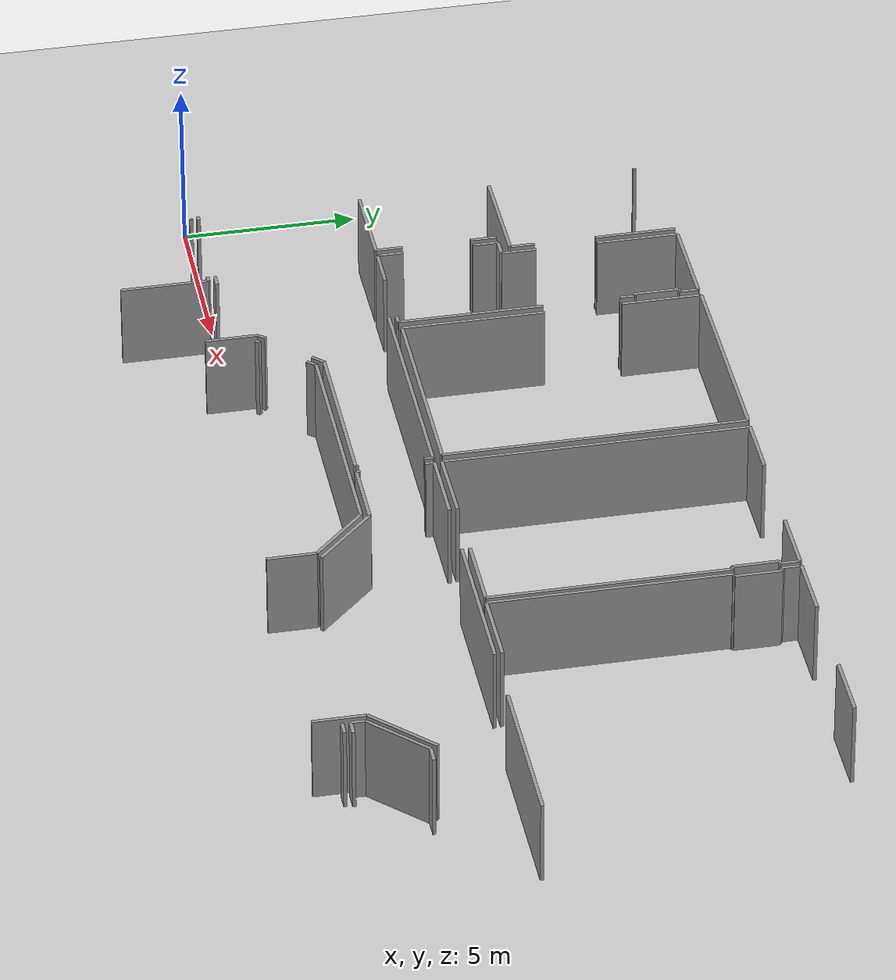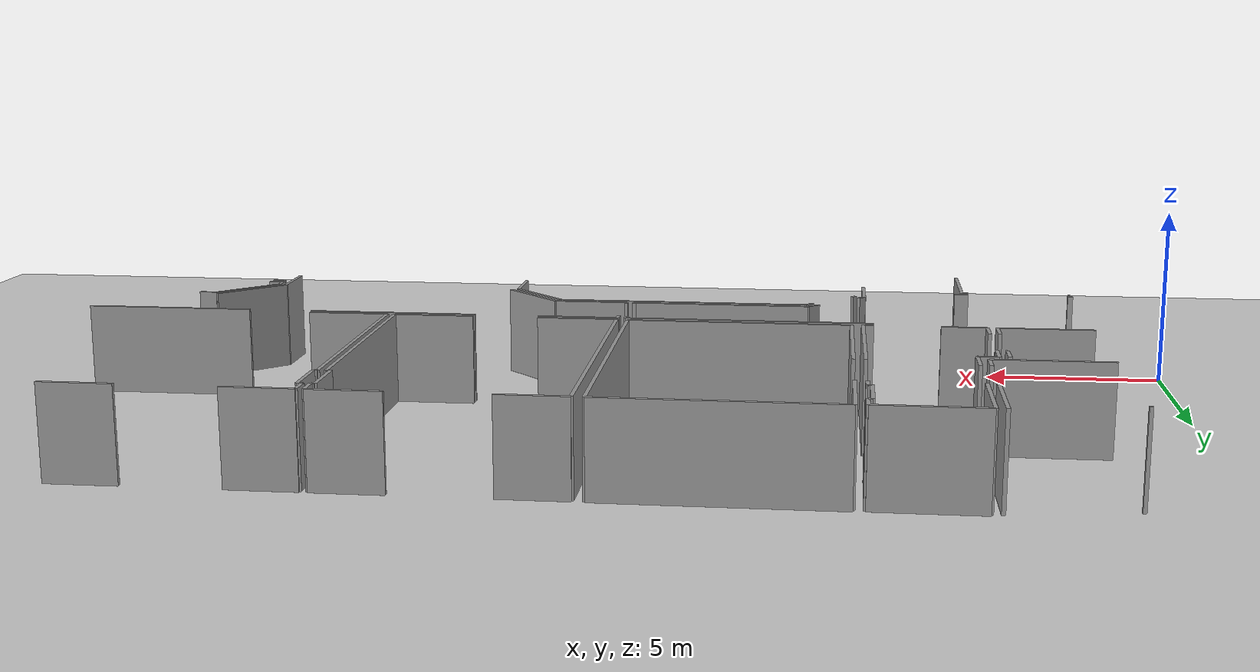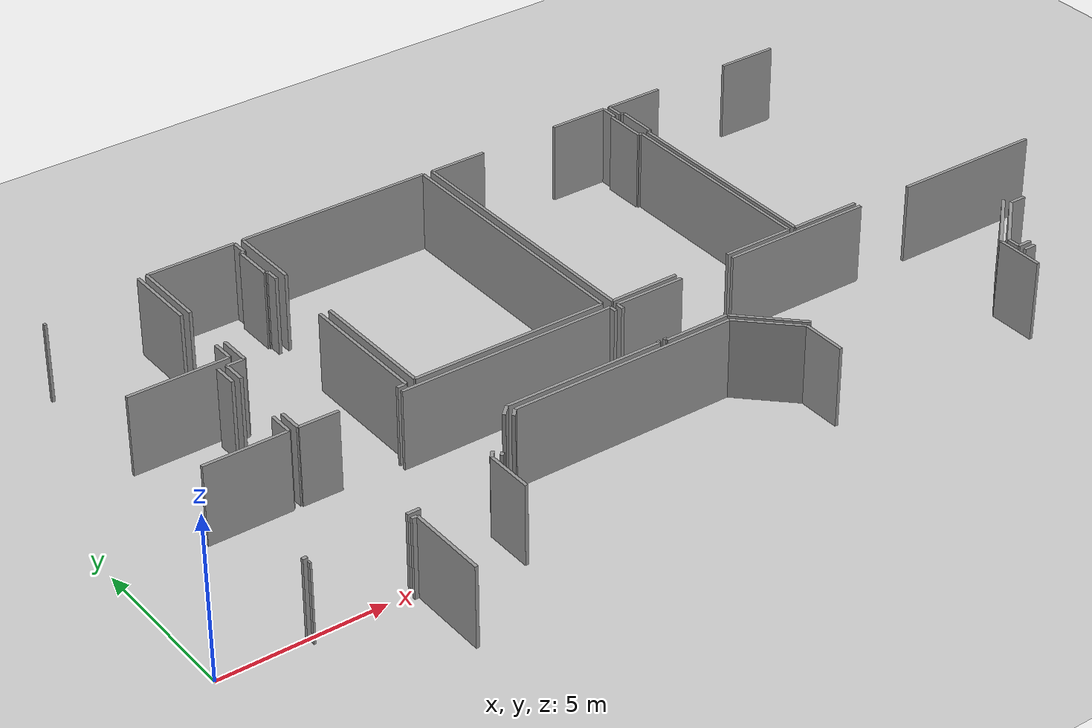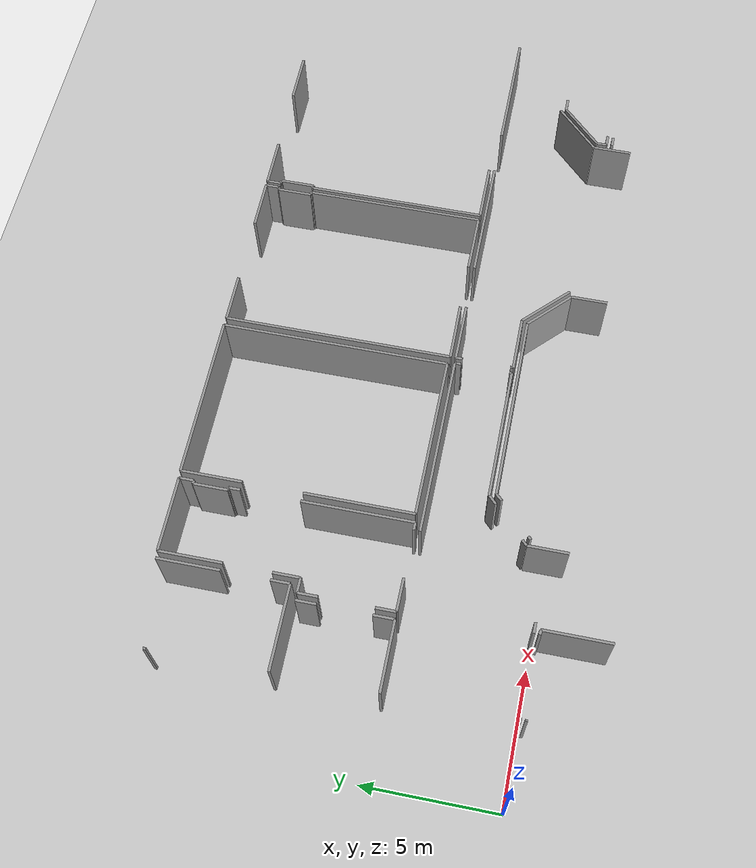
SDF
<sdf version="1.6">
 <world name="default">
  <model name="ground_plane">
   <static>1</static>
   <link name="link">
    <collision name="collision">
     <geometry><plane><normal>0 0 1</normal><size>100 100</size></plane></geometry>
     <surface><friction><ode><mu>100</mu><mu2>50</mu2></ode></friction></surface>
    </collision>
    <visual name="visual">
     <cast_shadows>0</cast_shadows>
     <geometry><plane><normal>0 0 1</normal><size>100 100</size></plane></geometry>
     <material>
      <script><uri>file://media/materials/scripts/gazebo.material</uri><name>Gazebo/Grey</name></script>
     </material>
    </visual>
   </link>
  </model>
  <model name="0510040943_A-40">
   <static>1</static>
   <link name="Wall_300">
    <collision name="Wall_300_Collision">
     <geometry><box><size>0.394022428579 0.1 2.5</size></box></geometry>
     <pose>0.197011214289 0 1.25 0 0 0</pose>
    </collision>
    <visual name="Wall_300_Visual">
     <pose>0.197011214289 0 1.25 0 0 0</pose>
     <geometry><box><size>0.394022428579 0.1 2.5</size></box></geometry>
     <material>
      <script><uri>file://media/materials/scripts/gazebo.material</uri><name>Gazebo/Grey</name></script>
      <ambient>1 1 1 1</ambient>
     </material>
    </visual>
    <pose>62.1956665144 -13.3688537068 0 0 0 3.14159265359</pose>
   </link>
   <link name="Wall_301">
    <collision name="Wall_301_Collision">
     <geometry><box><size>0.147916983813 0.1 2.5</size></box></geometry>
     <pose>0.0739584919064 0 1.25 0 0 0</pose>
    </collision>
    <visual name="Wall_301_Visual">
     <pose>0.0739584919064 0 1.25 0 0 0</pose>
     <geometry><box><size>0.147916983813 0.1 2.5</size></box></geometry>
     <material>
      <script><uri>file://media/materials/scripts/gazebo.material</uri><name>Gazebo/Grey</name></script>
      <ambient>1 1 1 1</ambient>
     </material>
    </visual>
    <pose>58.9172629015 -13.3688537068 0 0 0 3.14159265359</pose>
   </link>
   <link name="Wall_305">
    <collision name="Wall_305_Collision">
     <geometry><box><size>6.81027046227 0.1 2.5</size></box></geometry>
     <pose>3.40513523114 0 1.25 0 0 0</pose>
    </collision>
    <visual name="Wall_305_Visual">
     <pose>3.40513523114 0 1.25 0 0 0</pose>
     <geometry><box><size>6.81027046227 0.1 2.5</size></box></geometry>
     <material>
      <script><uri>file://media/materials/scripts/gazebo.material</uri><name>Gazebo/Grey</name></script>
      <ambient>1 1 1 1</ambient>
     </material>
    </visual>
    <pose>64.6714365454 -8.88034708479 0 0 0 0.0</pose>
   </link>
   <link name="Wall_306">
    <collision name="Wall_306_Collision">
     <geometry><box><size>0.237859643781 0.1 2.5</size></box></geometry>
     <pose>0.118929821891 0 1.25 0 0 0</pose>
    </collision>
    <visual name="Wall_306_Visual">
     <pose>0.118929821891 0 1.25 0 0 0</pose>
     <geometry><box><size>0.237859643781 0.1 2.5</size></box></geometry>
     <material>
      <script><uri>file://media/materials/scripts/gazebo.material</uri><name>Gazebo/Grey</name></script>
      <ambient>1 1 1 1</ambient>
     </material>
    </visual>
    <pose>71.4817070077 -8.88034708479 0 0 0 -1.57079632679</pose>
   </link>
   <link name="Wall_307">
    <collision name="Wall_307_Collision">
     <geometry><box><size>0.0882934997717 0.1 2.5</size></box></geometry>
     <pose>0.0441467498858 0 1.25 0 0 0</pose>
    </collision>
    <visual name="Wall_307_Visual">
     <pose>0.0441467498858 0 1.25 0 0 0</pose>
     <geometry><box><size>0.0882934997717 0.1 2.5</size></box></geometry>
     <material>
      <script><uri>file://media/materials/scripts/gazebo.material</uri><name>Gazebo/Grey</name></script>
      <ambient>1 1 1 1</ambient>
     </material>
    </visual>
    <pose>71.4817070077 -10.9481402547 0 0 0 -1.57079632679</pose>
   </link>
   <link name="Wall_308">
    <collision name="Wall_308_Collision">
     <geometry><box><size>5.00126858477 0.1 2.5</size></box></geometry>
     <pose>2.50063429238 0 1.25 0 0 0</pose>
    </collision>
    <visual name="Wall_308_Visual">
     <pose>2.50063429238 0 1.25 0 0 0</pose>
     <geometry><box><size>5.00126858477 0.1 2.5</size></box></geometry>
     <material>
      <script><uri>file://media/materials/scripts/gazebo.material</uri><name>Gazebo/Grey</name></script>
      <ambient>1 1 1 1</ambient>
     </material>
    </visual>
    <pose>71.4817070077 -11.0364337545 0 0 0 3.14159265359</pose>
   </link>
   <link name="Wall_309">
    <collision name="Wall_309_Collision">
     <geometry><box><size>0.411017431588 0.1 2.5</size></box></geometry>
     <pose>0.205508715794 0 1.25 0 0 0</pose>
    </collision>
    <visual name="Wall_309_Visual">
     <pose>0.205508715794 0 1.25 0 0 0</pose>
     <geometry><box><size>0.411017431588 0.1 2.5</size></box></geometry>
     <material>
      <script><uri>file://media/materials/scripts/gazebo.material</uri><name>Gazebo/Grey</name></script>
      <ambient>1 1 1 1</ambient>
     </material>
    </visual>
    <pose>66.4804384229 -11.0364337545 0 0 0 -2.3544485295</pose>
   </link>
   <link name="Wall_310">
    <collision name="Wall_310_Collision">
     <geometry><box><size>0.254203908047 0.1 2.5</size></box></geometry>
     <pose>0.127101954023 0 1.25 0 0 0</pose>
    </collision>
    <visual name="Wall_310_Visual">
     <pose>0.127101954023 0 1.25 0 0 0</pose>
     <geometry><box><size>0.254203908047 0.1 2.5</size></box></geometry>
     <material>
      <script><uri>file://media/materials/scripts/gazebo.material</uri><name>Gazebo/Grey</name></script>
      <ambient>1 1 1 1</ambient>
     </material>
    </visual>
    <pose>65.0339980718 -12.4547115238 0 0 0 -2.28662178168</pose>
   </link>
   <link name="Wall_311">
    <collision name="Wall_311_Collision">
     <geometry><box><size>1.50022834526 0.1 2.5</size></box></geometry>
     <pose>0.750114172629 0 1.25 0 0 0</pose>
    </collision>
    <visual name="Wall_311_Visual">
     <pose>0.750114172629 0 1.25 0 0 0</pose>
     <geometry><box><size>1.50022834526 0.1 2.5</size></box></geometry>
     <material>
      <script><uri>file://media/materials/scripts/gazebo.material</uri><name>Gazebo/Grey</name></script>
      <ambient>1 1 1 1</ambient>
     </material>
    </visual>
    <pose>64.8671791749 -12.6465215406 0 0 0 -1.57079632679</pose>
   </link>
   <link name="Wall_406">
    <collision name="Wall_406_Collision">
     <geometry><box><size>0.383746891967 0.1 2.5</size></box></geometry>
     <pose>0.191873445984 0 1.25 0 0 0</pose>
    </collision>
    <visual name="Wall_406_Visual">
     <pose>0.191873445984 0 1.25 0 0 0</pose>
     <geometry><box><size>0.383746891967 0.1 2.5</size></box></geometry>
     <material>
      <script><uri>file://media/materials/scripts/gazebo.material</uri><name>Gazebo/Grey</name></script>
      <ambient>1 1 1 1</ambient>
     </material>
    </visual>
    <pose>82.5804282742 -13.3693611407 0 0 0 0.0</pose>
   </link>
   <link name="Wall_413">
    <collision name="Wall_413_Collision">
     <geometry><box><size>0.391865834475 0.1 2.5</size></box></geometry>
     <pose>0.195932917238 0 1.25 0 0 0</pose>
    </collision>
    <visual name="Wall_413_Visual">
     <pose>0.195932917238 0 1.25 0 0 0</pose>
     <geometry><box><size>0.391865834475 0.1 2.5</size></box></geometry>
     <material>
      <script><uri>file://media/materials/scripts/gazebo.material</uri><name>Gazebo/Grey</name></script>
      <ambient>1 1 1 1</ambient>
     </material>
    </visual>
    <pose>82.576115086 -13.1377175623 0 0 0 1.57079632679</pose>
   </link>
   <link name="Wall_414">
    <collision name="Wall_414_Collision">
     <geometry><box><size>2.07329721891 0.1 2.5</size></box></geometry>
     <pose>1.03664860945 0 1.25 0 0 0</pose>
    </collision>
    <visual name="Wall_414_Visual">
     <pose>1.03664860945 0 1.25 0 0 0</pose>
     <geometry><box><size>2.07329721891 0.1 2.5</size></box></geometry>
     <material>
      <script><uri>file://media/materials/scripts/gazebo.material</uri><name>Gazebo/Grey</name></script>
      <ambient>1 1 1 1</ambient>
     </material>
    </visual>
    <pose>82.576115086 -12.7458517278 0 0 0 0.78725858612</pose>
   </link>
   <link name="Wall_415">
    <collision name="Wall_415_Collision">
     <geometry><box><size>0.50451616177 0.1 2.5</size></box></geometry>
     <pose>0.252258080885 0 1.25 0 0 0</pose>
    </collision>
    <visual name="Wall_415_Visual">
     <pose>0.252258080885 0 1.25 0 0 0</pose>
     <geometry><box><size>0.50451616177 0.1 2.5</size></box></geometry>
     <material>
      <script><uri>file://media/materials/scripts/gazebo.material</uri><name>Gazebo/Grey</name></script>
      <ambient>1 1 1 1</ambient>
     </material>
    </visual>
    <pose>84.0394276146 -11.2770842848 0 0 0 0.0</pose>
   </link>
   <link name="Wall_418">
    <collision name="Wall_418_Collision">
     <geometry><box><size>0.433118917314 0.1 2.5</size></box></geometry>
     <pose>0.216559458657 0 1.25 0 0 0</pose>
    </collision>
    <visual name="Wall_418_Visual">
     <pose>0.216559458657 0 1.25 0 0 0</pose>
     <geometry><box><size>0.433118917314 0.1 2.5</size></box></geometry>
     <material>
      <script><uri>file://media/materials/scripts/gazebo.material</uri><name>Gazebo/Grey</name></script>
      <ambient>1 1 1 1</ambient>
     </material>
    </visual>
    <pose>83.0092099254 -13.1422844674 0 0 0 3.13104822894</pose>
   </link>
   <link name="Wall_454">
    <collision name="Wall_454_Collision">
     <geometry><box><size>2.27709768792 0.1 2.5</size></box></geometry>
     <pose>1.13854884396 0 1.25 0 0 0</pose>
    </collision>
    <visual name="Wall_454_Visual">
     <pose>1.13854884396 0 1.25 0 0 0</pose>
     <geometry><box><size>2.27709768792 0.1 2.5</size></box></geometry>
     <material>
      <script><uri>file://media/materials/scripts/gazebo.material</uri><name>Gazebo/Grey</name></script>
      <ambient>1 1 1 1</ambient>
     </material>
    </visual>
    <pose>75.3809560055 -12.6668188968 0 0 0 2.35615509685</pose>
   </link>
   <link name="Wall_455">
    <collision name="Wall_455_Collision">
     <geometry><box><size>2.05992794439 0.1 2.5</size></box></geometry>
     <pose>1.02996397219 0 1.25 0 0 0</pose>
    </collision>
    <visual name="Wall_455_Visual">
     <pose>1.02996397219 0 1.25 0 0 0</pose>
     <geometry><box><size>2.05992794439 0.1 2.5</size></box></geometry>
     <material>
      <script><uri>file://media/materials/scripts/gazebo.material</uri><name>Gazebo/Grey</name></script>
      <ambient>1 1 1 1</ambient>
     </material>
    </visual>
    <pose>73.7708682194 -11.0566042523 0 0 0 3.14159265359</pose>
   </link>
   <link name="Wall_456">
    <collision name="Wall_456_Collision">
     <geometry><box><size>0.108717714518 0.1 2.5</size></box></geometry>
     <pose>0.0543588572588 0 1.25 0 0 0</pose>
    </collision>
    <visual name="Wall_456_Visual">
     <pose>0.0543588572588 0 1.25 0 0 0</pose>
     <geometry><box><size>0.108717714518 0.1 2.5</size></box></geometry>
     <material>
      <script><uri>file://media/materials/scripts/gazebo.material</uri><name>Gazebo/Grey</name></script>
      <ambient>1 1 1 1</ambient>
     </material>
    </visual>
    <pose>71.710940275 -11.0566042523 0 0 0 1.57079632679</pose>
   </link>
   <link name="Wall_457">
    <collision name="Wall_457_Collision">
     <geometry><box><size>0.258664433957 0.1 2.5</size></box></geometry>
     <pose>0.129332216979 0 1.25 0 0 0</pose>
    </collision>
    <visual name="Wall_457_Visual">
     <pose>0.129332216979 0 1.25 0 0 0</pose>
     <geometry><box><size>0.258664433957 0.1 2.5</size></box></geometry>
     <material>
      <script><uri>file://media/materials/scripts/gazebo.material</uri><name>Gazebo/Grey</name></script>
      <ambient>1 1 1 1</ambient>
     </material>
    </visual>
    <pose>71.710940275 -9.1349520475 0 0 0 1.57079632679</pose>
   </link>
   <link name="Wall_458">
    <collision name="Wall_458_Collision">
     <geometry><box><size>2.2230679454 0.1 2.5</size></box></geometry>
     <pose>1.1115339727 0 1.25 0 0 0</pose>
    </collision>
    <visual name="Wall_458_Visual">
     <pose>1.1115339727 0 1.25 0 0 0</pose>
     <geometry><box><size>2.2230679454 0.1 2.5</size></box></geometry>
     <material>
      <script><uri>file://media/materials/scripts/gazebo.material</uri><name>Gazebo/Grey</name></script>
      <ambient>1 1 1 1</ambient>
     </material>
    </visual>
    <pose>71.710940275 -8.87628761354 0 0 0 0.0</pose>
   </link>
   <link name="Wall_459">
    <collision name="Wall_459_Collision">
     <geometry><box><size>4.71215811641 0.1 2.5</size></box></geometry>
     <pose>2.3560790582 0 1.25 0 0 0</pose>
    </collision>
    <visual name="Wall_459_Visual">
     <pose>2.3560790582 0 1.25 0 0 0</pose>
     <geometry><box><size>4.71215811641 0.1 2.5</size></box></geometry>
     <material>
      <script><uri>file://media/materials/scripts/gazebo.material</uri><name>Gazebo/Grey</name></script>
      <ambient>1 1 1 1</ambient>
     </material>
    </visual>
    <pose>75.7252499112 -8.87628761354 0 0 0 0.0</pose>
   </link>
   <link name="Wall_460">
    <collision name="Wall_460_Collision">
     <geometry><box><size>4.7002334196 0.1 2.5</size></box></geometry>
     <pose>2.3501167098 0 1.25 0 0 0</pose>
    </collision>
    <visual name="Wall_460_Visual">
     <pose>2.3501167098 0 1.25 0 0 0</pose>
     <geometry><box><size>4.7002334196 0.1 2.5</size></box></geometry>
     <material>
      <script><uri>file://media/materials/scripts/gazebo.material</uri><name>Gazebo/Grey</name></script>
      <ambient>1 1 1 1</ambient>
     </material>
    </visual>
    <pose>82.2159638707 -8.87628761354 0 0 0 0.0</pose>
   </link>
   <link name="Wall_471">
    <collision name="Wall_471_Collision">
     <geometry><box><size>2.26256781936 0.1 2.5</size></box></geometry>
     <pose>1.13128390968 0 1.25 0 0 0</pose>
    </collision>
    <visual name="Wall_471_Visual">
     <pose>1.13128390968 0 1.25 0 0 0</pose>
     <geometry><box><size>2.26256781936 0.1 2.5</size></box></geometry>
     <material>
      <script><uri>file://media/materials/scripts/gazebo.material</uri><name>Gazebo/Grey</name></script>
      <ambient>1 1 1 1</ambient>
     </material>
    </visual>
    <pose>83.9521489826 -11.0616785914 0 0 0 -2.35750281914</pose>
   </link>
   <link name="Wall_472">
    <collision name="Wall_472_Collision">
     <geometry><box><size>1.48843050693 0.1 2.5</size></box></geometry>
     <pose>0.744215253463 0 1.25 0 0 0</pose>
    </collision>
    <visual name="Wall_472_Visual">
     <pose>0.744215253463 0 1.25 0 0 0</pose>
     <geometry><box><size>1.48843050693 0.1 2.5</size></box></geometry>
     <material>
      <script><uri>file://media/materials/scripts/gazebo.material</uri><name>Gazebo/Grey</name></script>
      <ambient>1 1 1 1</ambient>
     </material>
    </visual>
    <pose>82.350180139 -12.6594611052 0 0 0 -1.57079632679</pose>
   </link>
   <link name="Wall_528">
    <collision name="Wall_528_Collision">
     <geometry><box><size>6.78743593647 0.1 2.5</size></box></geometry>
     <pose>3.39371796823 0 1.25 0 0 0</pose>
    </collision>
    <visual name="Wall_528_Visual">
     <pose>3.39371796823 0 1.25 0 0 0</pose>
     <geometry><box><size>6.78743593647 0.1 2.5</size></box></geometry>
     <material>
      <script><uri>file://media/materials/scripts/gazebo.material</uri><name>Gazebo/Grey</name></script>
      <ambient>1 1 1 1</ambient>
     </material>
    </visual>
    <pose>78.1797077181 -8.67610493733 0 0 0 1.57079632679</pose>
   </link>
   <link name="Wall_529">
    <collision name="Wall_529_Collision">
     <geometry><box><size>0.102628507637 0.1 2.5</size></box></geometry>
     <pose>0.0513142538184 0 1.25 0 0 0</pose>
    </collision>
    <visual name="Wall_529_Visual">
     <pose>0.0513142538184 0 1.25 0 0 0</pose>
     <geometry><box><size>0.102628507637 0.1 2.5</size></box></geometry>
     <material>
      <script><uri>file://media/materials/scripts/gazebo.material</uri><name>Gazebo/Grey</name></script>
      <ambient>1 1 1 1</ambient>
     </material>
    </visual>
    <pose>78.1797077181 -1.88866900086 0 0 0 0.0</pose>
   </link>
   <link name="Wall_530">
    <collision name="Wall_530_Collision">
     <geometry><box><size>1.32008930837 0.1 2.5</size></box></geometry>
     <pose>0.660044654184 0 1.25 0 0 0</pose>
    </collision>
    <visual name="Wall_530_Visual">
     <pose>0.660044654184 0 1.25 0 0 0</pose>
     <geometry><box><size>1.32008930837 0.1 2.5</size></box></geometry>
     <material>
      <script><uri>file://media/materials/scripts/gazebo.material</uri><name>Gazebo/Grey</name></script>
      <ambient>1 1 1 1</ambient>
     </material>
    </visual>
    <pose>78.2823362257 -1.88866900086 0 0 0 1.57079632679</pose>
   </link>
   <link name="Wall_531">
    <collision name="Wall_531_Collision">
     <geometry><box><size>0.123306439336 0.1 2.5</size></box></geometry>
     <pose>0.0616532196681 0 1.25 0 0 0</pose>
    </collision>
    <visual name="Wall_531_Visual">
     <pose>0.0616532196681 0 1.25 0 0 0</pose>
     <geometry><box><size>0.123306439336 0.1 2.5</size></box></geometry>
     <material>
      <script><uri>file://media/materials/scripts/gazebo.material</uri><name>Gazebo/Grey</name></script>
      <ambient>1 1 1 1</ambient>
     </material>
    </visual>
    <pose>78.2823362257 -0.568579692495 0 0 0 3.14159265359</pose>
   </link>
   <link name="Wall_532">
    <collision name="Wall_532_Collision">
     <geometry><box><size>0.543969148018 0.1 2.5</size></box></geometry>
     <pose>0.271984574009 0 1.25 0 0 0</pose>
    </collision>
    <visual name="Wall_532_Visual">
     <pose>0.271984574009 0 1.25 0 0 0</pose>
     <geometry><box><size>0.543969148018 0.1 2.5</size></box></geometry>
     <material>
      <script><uri>file://media/materials/scripts/gazebo.material</uri><name>Gazebo/Grey</name></script>
      <ambient>1 1 1 1</ambient>
     </material>
    </visual>
    <pose>78.1590297864 -0.568579692495 0 0 0 1.57079632679</pose>
   </link>
   <link name="Wall_533">
    <collision name="Wall_533_Collision">
     <geometry><box><size>1.85682752322 0.1 2.5</size></box></geometry>
     <pose>0.928413761608 0 1.25 0 0 0</pose>
    </collision>
    <visual name="Wall_533_Visual">
     <pose>0.928413761608 0 1.25 0 0 0</pose>
     <geometry><box><size>1.85682752322 0.1 2.5</size></box></geometry>
     <material>
      <script><uri>file://media/materials/scripts/gazebo.material</uri><name>Gazebo/Grey</name></script>
      <ambient>1 1 1 1</ambient>
     </material>
    </visual>
    <pose>78.1590297864 -0.0246105444766 0 0 0 0.0</pose>
   </link>
   <link name="Wall_534">
    <collision name="Wall_534_Collision">
     <geometry><box><size>1.89843710357 0.1 2.5</size></box></geometry>
     <pose>0.949218551784 0 1.25 0 0 0</pose>
    </collision>
    <visual name="Wall_534_Visual">
     <pose>0.949218551784 0 1.25 0 0 0</pose>
     <geometry><box><size>1.89843710357 0.1 2.5</size></box></geometry>
     <material>
      <script><uri>file://media/materials/scripts/gazebo.material</uri><name>Gazebo/Grey</name></script>
      <ambient>1 1 1 1</ambient>
     </material>
    </visual>
    <pose>82.5635560968 -0.0246105444766 0 0 0 0.0</pose>
   </link>
   <link name="Wall_542">
    <collision name="Wall_542_Collision">
     <geometry><box><size>2.22917240311 0.1 2.5</size></box></geometry>
     <pose>1.11458620156 0 1.25 0 0 0</pose>
    </collision>
    <visual name="Wall_542_Visual">
     <pose>1.11458620156 0 1.25 0 0 0</pose>
     <geometry><box><size>2.22917240311 0.1 2.5</size></box></geometry>
     <material>
      <script><uri>file://media/materials/scripts/gazebo.material</uri><name>Gazebo/Grey</name></script>
      <ambient>1 1 1 1</ambient>
     </material>
    </visual>
    <pose>80.4088648704 -8.66785913635 0 0 0 -3.13789360376</pose>
   </link>
   <link name="Wall_543">
    <collision name="Wall_543_Collision">
     <geometry><box><size>8.65555386411 0.1 2.5</size></box></geometry>
     <pose>4.32777693205 0 1.25 0 0 0</pose>
    </collision>
    <visual name="Wall_543_Visual">
     <pose>4.32777693205 0 1.25 0 0 0</pose>
     <geometry><box><size>8.65555386411 0.1 2.5</size></box></geometry>
     <material>
      <script><uri>file://media/materials/scripts/gazebo.material</uri><name>Gazebo/Grey</name></script>
      <ambient>1 1 1 1</ambient>
     </material>
    </visual>
    <pose>71.7063733699 -8.6735677678 0 0 0 1.57079632679</pose>
   </link>
   <link name="Wall_544">
    <collision name="Wall_544_Collision">
     <geometry><box><size>1.81889683869 0.1 2.5</size></box></geometry>
     <pose>0.909448419343 0 1.25 0 0 0</pose>
    </collision>
    <visual name="Wall_544_Visual">
     <pose>0.909448419343 0 1.25 0 0 0</pose>
     <geometry><box><size>1.81889683869 0.1 2.5</size></box></geometry>
     <material>
      <script><uri>file://media/materials/scripts/gazebo.material</uri><name>Gazebo/Grey</name></script>
      <ambient>1 1 1 1</ambient>
     </material>
    </visual>
    <pose>71.7063733699 -0.018013903689 0 0 0 0.0</pose>
   </link>
   <link name="Wall_545">
    <collision name="Wall_545_Collision">
     <geometry><box><size>1.87141624803 0.1 2.5</size></box></geometry>
     <pose>0.935708124017 0 1.25 0 0 0</pose>
    </collision>
    <visual name="Wall_545_Visual">
     <pose>0.935708124017 0 1.25 0 0 0</pose>
     <geometry><box><size>1.87141624803 0.1 2.5</size></box></geometry>
     <material>
      <script><uri>file://media/materials/scripts/gazebo.material</uri><name>Gazebo/Grey</name></script>
      <ambient>1 1 1 1</ambient>
     </material>
    </visual>
    <pose>76.0845131172 -0.018013903689 0 0 0 0.0</pose>
   </link>
   <link name="Wall_546">
    <collision name="Wall_546_Collision">
     <geometry><box><size>0.543334855635 0.1 2.5</size></box></geometry>
     <pose>0.271667427818 0 1.25 0 0 0</pose>
    </collision>
    <visual name="Wall_546_Visual">
     <pose>0.271667427818 0 1.25 0 0 0</pose>
     <geometry><box><size>0.543334855635 0.1 2.5</size></box></geometry>
     <material>
      <script><uri>file://media/materials/scripts/gazebo.material</uri><name>Gazebo/Grey</name></script>
      <ambient>1 1 1 1</ambient>
     </material>
    </visual>
    <pose>77.9559293652 -0.018013903689 0 0 0 -1.57079632679</pose>
   </link>
   <link name="Wall_547">
    <collision name="Wall_547_Collision">
     <geometry><box><size>0.101613639823 0.1 2.5</size></box></geometry>
     <pose>0.0508068199117 0 1.25 0 0 0</pose>
    </collision>
    <visual name="Wall_547_Visual">
     <pose>0.0508068199117 0 1.25 0 0 0</pose>
     <geometry><box><size>0.101613639823 0.1 2.5</size></box></geometry>
     <material>
      <script><uri>file://media/materials/scripts/gazebo.material</uri><name>Gazebo/Grey</name></script>
      <ambient>1 1 1 1</ambient>
     </material>
    </visual>
    <pose>77.9559293652 -0.561348759324 0 0 0 3.14159265359</pose>
   </link>
   <link name="Wall_548">
    <collision name="Wall_548_Collision">
     <geometry><box><size>1.31044806414 0.1 2.5</size></box></geometry>
     <pose>0.65522403207 0 1.25 0 0 0</pose>
    </collision>
    <visual name="Wall_548_Visual">
     <pose>0.65522403207 0 1.25 0 0 0</pose>
     <geometry><box><size>1.31044806414 0.1 2.5</size></box></geometry>
     <material>
      <script><uri>file://media/materials/scripts/gazebo.material</uri><name>Gazebo/Grey</name></script>
      <ambient>1 1 1 1</ambient>
     </material>
    </visual>
    <pose>77.8543157254 -0.561348759324 0 0 0 -1.57079632679</pose>
   </link>
   <link name="Wall_549">
    <collision name="Wall_549_Collision">
     <geometry><box><size>0.109478865378 0.1 2.5</size></box></geometry>
     <pose>0.0547394326889 0 1.25 0 0 0</pose>
    </collision>
    <visual name="Wall_549_Visual">
     <pose>0.0547394326889 0 1.25 0 0 0</pose>
     <geometry><box><size>0.109478865378 0.1 2.5</size></box></geometry>
     <material>
      <script><uri>file://media/materials/scripts/gazebo.material</uri><name>Gazebo/Grey</name></script>
      <ambient>1 1 1 1</ambient>
     </material>
    </visual>
    <pose>77.8543157254 -1.87179682346 0 0 0 0.0</pose>
   </link>
   <link name="Wall_550">
    <collision name="Wall_550_Collision">
     <geometry><box><size>6.77766783376 0.1 2.5</size></box></geometry>
     <pose>3.38883391688 0 1.25 0 0 0</pose>
    </collision>
    <visual name="Wall_550_Visual">
     <pose>3.38883391688 0 1.25 0 0 0</pose>
     <geometry><box><size>6.77766783376 0.1 2.5</size></box></geometry>
     <material>
      <script><uri>file://media/materials/scripts/gazebo.material</uri><name>Gazebo/Grey</name></script>
      <ambient>1 1 1 1</ambient>
     </material>
    </visual>
    <pose>77.9637945908 -1.87179682346 0 0 0 -1.57079632679</pose>
   </link>
   <link name="Wall_551">
    <collision name="Wall_551_Collision">
     <geometry><box><size>2.23220175572 0.1 2.5</size></box></geometry>
     <pose>1.11610087786 0 1.25 0 0 0</pose>
    </collision>
    <visual name="Wall_551_Visual">
     <pose>1.11610087786 0 1.25 0 0 0</pose>
     <geometry><box><size>2.23220175572 0.1 2.5</size></box></geometry>
     <material>
      <script><uri>file://media/materials/scripts/gazebo.material</uri><name>Gazebo/Grey</name></script>
      <ambient>1 1 1 1</ambient>
     </material>
    </visual>
    <pose>77.9637945908 -8.64946465723 0 0 0 3.14159265359</pose>
   </link>
   <link name="Wall_552">
    <collision name="Wall_552_Collision">
     <geometry><box><size>2.20797649148 0.1 2.5</size></box></geometry>
     <pose>1.10398824574 0 1.25 0 0 0</pose>
    </collision>
    <visual name="Wall_552_Visual">
     <pose>1.10398824574 0 1.25 0 0 0</pose>
     <geometry><box><size>2.20797649148 0.1 2.5</size></box></geometry>
     <material>
      <script><uri>file://media/materials/scripts/gazebo.material</uri><name>Gazebo/Grey</name></script>
      <ambient>1 1 1 1</ambient>
     </material>
    </visual>
    <pose>73.9142182981 -8.64946465723 0 0 0 -3.13067605669</pose>
   </link>
   <link name="Wall_553">
    <collision name="Wall_553_Collision">
     <geometry><box><size>4.08661896788 0.1 2.5</size></box></geometry>
     <pose>2.04330948394 0 1.25 0 0 0</pose>
    </collision>
    <visual name="Wall_553_Visual">
     <pose>2.04330948394 0 1.25 0 0 0</pose>
     <geometry><box><size>4.08661896788 0.1 2.5</size></box></geometry>
     <material>
      <script><uri>file://media/materials/scripts/gazebo.material</uri><name>Gazebo/Grey</name></script>
      <ambient>1 1 1 1</ambient>
     </material>
    </visual>
    <pose>65.2759171868 -8.60189272847 0 0 0 1.57079632679</pose>
   </link>
   <link name="Wall_554">
    <collision name="Wall_554_Collision">
     <geometry><box><size>2.28941492871 0.1 2.5</size></box></geometry>
     <pose>1.14470746435 0 1.25 0 0 0</pose>
    </collision>
    <visual name="Wall_554_Visual">
     <pose>1.14470746435 0 1.25 0 0 0</pose>
     <geometry><box><size>2.28941492871 0.1 2.5</size></box></geometry>
     <material>
      <script><uri>file://media/materials/scripts/gazebo.material</uri><name>Gazebo/Grey</name></script>
      <ambient>1 1 1 1</ambient>
     </material>
    </visual>
    <pose>65.2759171868 -2.28941492871 0 0 0 1.57079632679</pose>
   </link>
   <link name="Wall_555">
    <collision name="Wall_555_Collision">
     <geometry><box><size>6.12244380169 0.1 2.5</size></box></geometry>
     <pose>3.06122190085 0 1.25 0 0 0</pose>
    </collision>
    <visual name="Wall_555_Visual">
     <pose>3.06122190085 0 1.25 0 0 0</pose>
     <geometry><box><size>6.12244380169 0.1 2.5</size></box></geometry>
     <material>
      <script><uri>file://media/materials/scripts/gazebo.material</uri><name>Gazebo/Grey</name></script>
      <ambient>1 1 1 1</ambient>
     </material>
    </visual>
    <pose>65.2759171868 -0.0 0 0 0 0.0</pose>
   </link>
   <link name="Wall_556">
    <collision name="Wall_556_Collision">
     <geometry><box><size>8.6093773786 0.1 2.5</size></box></geometry>
     <pose>4.3046886893 0 1.25 0 0 0</pose>
    </collision>
    <visual name="Wall_556_Visual">
     <pose>4.3046886893 0 1.25 0 0 0</pose>
     <geometry><box><size>8.6093773786 0.1 2.5</size></box></geometry>
     <material>
      <script><uri>file://media/materials/scripts/gazebo.material</uri><name>Gazebo/Grey</name></script>
      <ambient>1 1 1 1</ambient>
     </material>
    </visual>
    <pose>71.3983609885 -0.0 0 0 0 -1.57079632679</pose>
   </link>
   <link name="Wall_557">
    <collision name="Wall_557_Collision">
     <geometry><box><size>6.12244837666 0.1 2.5</size></box></geometry>
     <pose>3.06122418833 0 1.25 0 0 0</pose>
    </collision>
    <visual name="Wall_557_Visual">
     <pose>3.06122418833 0 1.25 0 0 0</pose>
     <geometry><box><size>6.12244837666 0.1 2.5</size></box></geometry>
     <material>
      <script><uri>file://media/materials/scripts/gazebo.material</uri><name>Gazebo/Grey</name></script>
      <ambient>1 1 1 1</ambient>
     </material>
    </visual>
    <pose>71.3983609885 -8.6093773786 0 0 0 3.14037016031</pose>
   </link>
   <link name="Wall_559">
    <collision name="Wall_559_Collision">
     <geometry><box><size>0.0907038108286 0.1 2.5</size></box></geometry>
     <pose>0.0453519054143 0 1.25 0 0 0</pose>
    </collision>
    <visual name="Wall_559_Visual">
     <pose>0.0453519054143 0 1.25 0 0 0</pose>
     <geometry><box><size>0.0907038108286 0.1 2.5</size></box></geometry>
     <material>
      <script><uri>file://media/materials/scripts/gazebo.material</uri><name>Gazebo/Grey</name></script>
      <ambient>1 1 1 1</ambient>
     </material>
    </visual>
    <pose>58.7819049069 -0.561348759324 0 0 0 3.14159265359</pose>
   </link>
   <link name="Wall_562">
    <collision name="Wall_562_Collision">
     <geometry><box><size>2.32734561323 0.1 2.5</size></box></geometry>
     <pose>1.16367280662 0 1.25 0 0 0</pose>
    </collision>
    <visual name="Wall_562_Visual">
     <pose>1.16367280662 0 1.25 0 0 0</pose>
     <geometry><box><size>2.32734561323 0.1 2.5</size></box></geometry>
     <material>
      <script><uri>file://media/materials/scripts/gazebo.material</uri><name>Gazebo/Grey</name></script>
      <ambient>1 1 1 1</ambient>
     </material>
    </visual>
    <pose>61.9140406962 -0.0378038260517 0 0 0 -1.57079632679</pose>
   </link>
   <link name="Wall_563">
    <collision name="Wall_563_Collision">
     <geometry><box><size>0.707489724463 0.1 2.5</size></box></geometry>
     <pose>0.353744862232 0 1.25 0 0 0</pose>
    </collision>
    <visual name="Wall_563_Visual">
     <pose>0.353744862232 0 1.25 0 0 0</pose>
     <geometry><box><size>0.707489724463 0.1 2.5</size></box></geometry>
     <material>
      <script><uri>file://media/materials/scripts/gazebo.material</uri><name>Gazebo/Grey</name></script>
      <ambient>1 1 1 1</ambient>
     </material>
    </visual>
    <pose>61.9140406962 -4.14789161212 0 0 0 -1.57079632679</pose>
   </link>
   <link name="Wall_564">
    <collision name="Wall_564_Collision">
     <geometry><box><size>3.13217216907 0.1 2.5</size></box></geometry>
     <pose>1.56608608454 0 1.25 0 0 0</pose>
    </collision>
    <visual name="Wall_564_Visual">
     <pose>1.56608608454 0 1.25 0 0 0</pose>
     <geometry><box><size>3.13217216907 0.1 2.5</size></box></geometry>
     <material>
      <script><uri>file://media/materials/scripts/gazebo.material</uri><name>Gazebo/Grey</name></script>
      <ambient>1 1 1 1</ambient>
     </material>
    </visual>
    <pose>61.9140406962 -4.85538133658 0 0 0 -3.13677292582</pose>
   </link>
   <link name="Wall_567">
    <collision name="Wall_567_Collision">
     <geometry><box><size>0.753539351499 0.1 2.5</size></box></geometry>
     <pose>0.37676967575 0 1.25 0 0 0</pose>
    </collision>
    <visual name="Wall_567_Visual">
     <pose>0.37676967575 0 1.25 0 0 0</pose>
     <geometry><box><size>0.753539351499 0.1 2.5</size></box></geometry>
     <material>
      <script><uri>file://media/materials/scripts/gazebo.material</uri><name>Gazebo/Grey</name></script>
      <ambient>1 1 1 1</ambient>
     </material>
    </visual>
    <pose>61.3733698686 -5.15121530421 0 0 0 -1.57079632679</pose>
   </link>
   <link name="Wall_568">
    <collision name="Wall_568_Collision">
     <geometry><box><size>0.775739584919 0.1 2.5</size></box></geometry>
     <pose>0.38786979246 0 1.25 0 0 0</pose>
    </collision>
    <visual name="Wall_568_Visual">
     <pose>0.38786979246 0 1.25 0 0 0</pose>
     <geometry><box><size>0.775739584919 0.1 2.5</size></box></geometry>
     <material>
      <script><uri>file://media/materials/scripts/gazebo.material</uri><name>Gazebo/Grey</name></script>
      <ambient>1 1 1 1</ambient>
     </material>
    </visual>
    <pose>61.3733698686 -7.87537423251 0 0 0 -1.57079632679</pose>
   </link>
   <link name="Wall_569">
    <collision name="Wall_569_Collision">
     <geometry><box><size>2.59427670375 0.1 2.5</size></box></geometry>
     <pose>1.29713835187 0 1.25 0 0 0</pose>
    </collision>
    <visual name="Wall_569_Visual">
     <pose>1.29713835187 0 1.25 0 0 0</pose>
     <geometry><box><size>2.59427670375 0.1 2.5</size></box></geometry>
     <material>
      <script><uri>file://media/materials/scripts/gazebo.material</uri><name>Gazebo/Grey</name></script>
      <ambient>1 1 1 1</ambient>
     </material>
    </visual>
    <pose>61.3733698686 -8.65111381743 0 0 0 -3.13758289513</pose>
   </link>
   <link name="Wall_570">
    <collision name="Wall_570_Collision">
     <geometry><box><size>0.748718729386 0.1 2.5</size></box></geometry>
     <pose>0.374359364693 0 1.25 0 0 0</pose>
    </collision>
    <visual name="Wall_570_Visual">
     <pose>0.374359364693 0 1.25 0 0 0</pose>
     <geometry><box><size>0.748718729386 0.1 2.5</size></box></geometry>
     <material>
      <script><uri>file://media/materials/scripts/gazebo.material</uri><name>Gazebo/Grey</name></script>
      <ambient>1 1 1 1</ambient>
     </material>
    </visual>
    <pose>61.640406962 -8.65174810981 0 0 0 1.57079632679</pose>
   </link>
   <link name="Wall_571">
    <collision name="Wall_571_Collision">
     <geometry><box><size>0.739204343634 0.1 2.5</size></box></geometry>
     <pose>0.369602171817 0 1.25 0 0 0</pose>
    </collision>
    <visual name="Wall_571_Visual">
     <pose>0.369602171817 0 1.25 0 0 0</pose>
     <geometry><box><size>0.739204343634 0.1 2.5</size></box></geometry>
     <material>
      <script><uri>file://media/materials/scripts/gazebo.material</uri><name>Gazebo/Grey</name></script>
      <ambient>1 1 1 1</ambient>
     </material>
    </visual>
    <pose>61.640406962 -5.89524026995 0 0 0 1.57079632679</pose>
   </link>
   <link name="Wall_572">
    <collision name="Wall_572_Collision">
     <geometry><box><size>0.543588572588 0.1 2.5</size></box></geometry>
     <pose>0.271794286294 0 1.25 0 0 0</pose>
    </collision>
    <visual name="Wall_572_Visual">
     <pose>0.271794286294 0 1.25 0 0 0</pose>
     <geometry><box><size>0.543588572588 0.1 2.5</size></box></geometry>
     <material>
      <script><uri>file://media/materials/scripts/gazebo.material</uri><name>Gazebo/Grey</name></script>
      <ambient>1 1 1 1</ambient>
     </material>
    </visual>
    <pose>61.640406962 -5.15603592632 0 0 0 0.0</pose>
   </link>
   <link name="Wall_573">
    <collision name="Wall_573_Collision">
     <geometry><box><size>1.00268939971 0.1 2.5</size></box></geometry>
     <pose>0.501344699853 0 1.25 0 0 0</pose>
    </collision>
    <visual name="Wall_573_Visual">
     <pose>0.501344699853 0 1.25 0 0 0</pose>
     <geometry><box><size>1.00268939971 0.1 2.5</size></box></geometry>
     <material>
      <script><uri>file://media/materials/scripts/gazebo.material</uri><name>Gazebo/Grey</name></script>
      <ambient>1 1 1 1</ambient>
     </material>
    </visual>
    <pose>62.1839955346 -5.15603592632 0 0 0 1.57079632679</pose>
   </link>
   <link name="Wall_574">
    <collision name="Wall_574_Collision">
     <geometry><box><size>2.34599380931 0.1 2.5</size></box></geometry>
     <pose>1.17299690465 0 1.25 0 0 0</pose>
    </collision>
    <visual name="Wall_574_Visual">
     <pose>1.17299690465 0 1.25 0 0 0</pose>
     <geometry><box><size>2.34599380931 0.1 2.5</size></box></geometry>
     <material>
      <script><uri>file://media/materials/scripts/gazebo.material</uri><name>Gazebo/Grey</name></script>
      <ambient>1 1 1 1</ambient>
     </material>
    </visual>
    <pose>62.1839955346 -2.37504440047 0 0 0 1.57079632679</pose>
   </link>
   <link name="Wall_575">
    <collision name="Wall_575_Collision">
     <geometry><box><size>2.8090272492 0.1 2.5</size></box></geometry>
     <pose>1.4045136246 0 1.25 0 0 0</pose>
    </collision>
    <visual name="Wall_575_Visual">
     <pose>1.4045136246 0 1.25 0 0 0</pose>
     <geometry><box><size>2.8090272492 0.1 2.5</size></box></geometry>
     <material>
      <script><uri>file://media/materials/scripts/gazebo.material</uri><name>Gazebo/Grey</name></script>
      <ambient>1 1 1 1</ambient>
     </material>
    </visual>
    <pose>62.1839955346 -0.0290505911605 0 0 0 0.0</pose>
   </link>
   <link name="Wall_576">
    <collision name="Wall_576_Collision">
     <geometry><box><size>0.537499365708 0.1 2.5</size></box></geometry>
     <pose>0.268749682854 0 1.25 0 0 0</pose>
    </collision>
    <visual name="Wall_576_Visual">
     <pose>0.268749682854 0 1.25 0 0 0</pose>
     <geometry><box><size>0.537499365708 0.1 2.5</size></box></geometry>
     <material>
      <script><uri>file://media/materials/scripts/gazebo.material</uri><name>Gazebo/Grey</name></script>
      <ambient>1 1 1 1</ambient>
     </material>
    </visual>
    <pose>64.9930227838 -0.0290505911605 0 0 0 -1.57079632679</pose>
   </link>
   <link name="Wall_577">
    <collision name="Wall_577_Collision">
     <geometry><box><size>0.120642411326 0.1 2.5</size></box></geometry>
     <pose>0.060321205663 0 1.25 0 0 0</pose>
    </collision>
    <visual name="Wall_577_Visual">
     <pose>0.060321205663 0 1.25 0 0 0</pose>
     <geometry><box><size>0.120642411326 0.1 2.5</size></box></geometry>
     <material>
      <script><uri>file://media/materials/scripts/gazebo.material</uri><name>Gazebo/Grey</name></script>
      <ambient>1 1 1 1</ambient>
     </material>
    </visual>
    <pose>64.9930227838 -0.566549956868 0 0 0 3.14159265359</pose>
   </link>
   <link name="Wall_578">
    <collision name="Wall_578_Collision">
     <geometry><box><size>1.29421017912 0.1 2.5</size></box></geometry>
     <pose>0.647105089562 0 1.25 0 0 0</pose>
    </collision>
    <visual name="Wall_578_Visual">
     <pose>0.647105089562 0 1.25 0 0 0</pose>
     <geometry><box><size>1.29421017912 0.1 2.5</size></box></geometry>
     <material>
      <script><uri>file://media/materials/scripts/gazebo.material</uri><name>Gazebo/Grey</name></script>
      <ambient>1 1 1 1</ambient>
     </material>
    </visual>
    <pose>64.8723803725 -0.566549956868 0 0 0 -1.57079632679</pose>
   </link>
   <link name="Wall_579">
    <collision name="Wall_579_Collision">
     <geometry><box><size>0.0934946973157 0.1 2.5</size></box></geometry>
     <pose>0.0467473486578 0 1.25 0 0 0</pose>
    </collision>
    <visual name="Wall_579_Visual">
     <pose>0.0467473486578 0 1.25 0 0 0</pose>
     <geometry><box><size>0.0934946973157 0.1 2.5</size></box></geometry>
     <material>
      <script><uri>file://media/materials/scripts/gazebo.material</uri><name>Gazebo/Grey</name></script>
      <ambient>1 1 1 1</ambient>
     </material>
    </visual>
    <pose>64.8723803725 -1.86076013599 0 0 0 0.0</pose>
   </link>
   <link name="Wall_580">
    <collision name="Wall_580_Collision">
     <geometry><box><size>0.427132490993 0.1 2.5</size></box></geometry>
     <pose>0.213566245497 0 1.25 0 0 0</pose>
    </collision>
    <visual name="Wall_580_Visual">
     <pose>0.213566245497 0 1.25 0 0 0</pose>
     <geometry><box><size>0.427132490993 0.1 2.5</size></box></geometry>
     <material>
      <script><uri>file://media/materials/scripts/gazebo.material</uri><name>Gazebo/Grey</name></script>
      <ambient>1 1 1 1</ambient>
     </material>
    </visual>
    <pose>64.9658750698 -1.86076013599 0 0 0 -1.57079632679</pose>
   </link>
   <link name="Wall_581">
    <collision name="Wall_581_Collision">
     <geometry><box><size>4.15829400721 0.1 2.5</size></box></geometry>
     <pose>2.0791470036 0 1.25 0 0 0</pose>
    </collision>
    <visual name="Wall_581_Visual">
     <pose>2.0791470036 0 1.25 0 0 0</pose>
     <geometry><box><size>4.15829400721 0.1 2.5</size></box></geometry>
     <material>
      <script><uri>file://media/materials/scripts/gazebo.material</uri><name>Gazebo/Grey</name></script>
      <ambient>1 1 1 1</ambient>
     </material>
    </visual>
    <pose>64.9658750698 -4.49776729081 0 0 0 -1.57079632679</pose>
   </link>
   <link name="Wall_582">
    <collision name="Wall_582_Collision">
     <geometry><box><size>0.290886487035 0.1 2.5</size></box></geometry>
     <pose>0.145443243518 0 1.25 0 0 0</pose>
    </collision>
    <visual name="Wall_582_Visual">
     <pose>0.145443243518 0 1.25 0 0 0</pose>
     <geometry><box><size>0.290886487035 0.1 2.5</size></box></geometry>
     <material>
      <script><uri>file://media/materials/scripts/gazebo.material</uri><name>Gazebo/Grey</name></script>
      <ambient>1 1 1 1</ambient>
     </material>
    </visual>
    <pose>64.9658750698 -8.65606129802 0 0 0 3.14159265359</pose>
   </link>
   <link name="Wall_583">
    <collision name="Wall_583_Collision">
     <geometry><box><size>1.23319879468 0.1 2.5</size></box></geometry>
     <pose>0.616599397341 0 1.25 0 0 0</pose>
    </collision>
    <visual name="Wall_583_Visual">
     <pose>0.616599397341 0 1.25 0 0 0</pose>
     <geometry><box><size>1.23319879468 0.1 2.5</size></box></geometry>
     <material>
      <script><uri>file://media/materials/scripts/gazebo.material</uri><name>Gazebo/Grey</name></script>
      <ambient>1 1 1 1</ambient>
     </material>
    </visual>
    <pose>62.8735982138 -8.65606129802 0 0 0 3.1380950853</pose>
   </link>
   <link name="Wall_585">
    <collision name="Wall_585_Collision">
     <geometry><box><size>0.0613995027148 0.1 2.5</size></box></geometry>
     <pose>0.0306997513574 0 1.25 0 0 0</pose>
    </collision>
    <visual name="Wall_585_Visual">
     <pose>0.0306997513574 0 1.25 0 0 0</pose>
     <geometry><box><size>0.0613995027148 0.1 2.5</size></box></geometry>
     <material>
      <script><uri>file://media/materials/scripts/gazebo.material</uri><name>Gazebo/Grey</name></script>
      <ambient>1 1 1 1</ambient>
     </material>
    </visual>
    <pose>58.8219921855 -13.5807073629 0 0 0 0.0</pose>
   </link>
   <link name="Wall_586">
    <collision name="Wall_586_Collision">
     <geometry><box><size>0.17975846146 0.1 2.5</size></box></geometry>
     <pose>0.0898792307302 0 1.25 0 0 0</pose>
    </collision>
    <visual name="Wall_586_Visual">
     <pose>0.0898792307302 0 1.25 0 0 0</pose>
     <geometry><box><size>0.17975846146 0.1 2.5</size></box></geometry>
     <material>
      <script><uri>file://media/materials/scripts/gazebo.material</uri><name>Gazebo/Grey</name></script>
      <ambient>1 1 1 1</ambient>
     </material>
    </visual>
    <pose>61.7930177094 -13.5807073629 0 0 0 0.0</pose>
   </link>
   <link name="Wall_587">
    <collision name="Wall_587_Collision">
     <geometry><box><size>2.52321510123 0.1 2.5</size></box></geometry>
     <pose>1.26160755062 0 1.25 0 0 0</pose>
    </collision>
    <visual name="Wall_587_Visual">
     <pose>1.26160755062 0 1.25 0 0 0</pose>
     <geometry><box><size>2.52321510123 0.1 2.5</size></box></geometry>
     <material>
      <script><uri>file://media/materials/scripts/gazebo.material</uri><name>Gazebo/Grey</name></script>
      <ambient>1 1 1 1</ambient>
     </material>
    </visual>
    <pose>61.9727761709 -13.5807073629 0 0 0 -1.57079632679</pose>
   </link>
   <link name="Wall_590">
    <collision name="Wall_590_Collision">
     <geometry><box><size>0.137568001686 0.1 2.5</size></box></geometry>
     <pose>0.068784000843 0 1.25 0 0 0</pose>
    </collision>
    <visual name="Wall_590_Visual">
     <pose>0.068784000843 0 1.25 0 0 0</pose>
     <geometry><box><size>0.137568001686 0.1 2.5</size></box></geometry>
     <material>
      <script><uri>file://media/materials/scripts/gazebo.material</uri><name>Gazebo/Grey</name></script>
      <ambient>1 1 1 1</ambient>
     </material>
    </visual>
    <pose>65.1127771858 -12.7402699548 0 0 0 0.757355940202</pose>
   </link>
   <link name="Wall_591">
    <collision name="Wall_591_Collision">
     <geometry><box><size>0.304585934458 0.1 2.5</size></box></geometry>
     <pose>0.152292967229 0 1.25 0 0 0</pose>
    </collision>
    <visual name="Wall_591_Visual">
     <pose>0.152292967229 0 1.25 0 0 0</pose>
     <geometry><box><size>0.304585934458 0.1 2.5</size></box></geometry>
     <material>
      <script><uri>file://media/materials/scripts/gazebo.material</uri><name>Gazebo/Grey</name></script>
      <ambient>1 1 1 1</ambient>
     </material>
    </visual>
    <pose>66.3685492465 -11.5037803826 0 0 0 0.836959616795</pose>
   </link>
   <link name="Wall_592">
    <collision name="Wall_592_Collision">
     <geometry><box><size>7.10242553407 0.1 2.5</size></box></geometry>
     <pose>3.55121276704 0 1.25 0 0 0</pose>
    </collision>
    <visual name="Wall_592_Visual">
     <pose>3.55121276704 0 1.25 0 0 0</pose>
     <geometry><box><size>7.10242553407 0.1 2.5</size></box></geometry>
     <material>
      <script><uri>file://media/materials/scripts/gazebo.material</uri><name>Gazebo/Grey</name></script>
      <ambient>1 1 1 1</ambient>
     </material>
    </visual>
    <pose>66.572537677 -11.2775917187 0 0 0 0.0</pose>
   </link>
   <link name="Wall_593">
    <collision name="Wall_593_Collision">
     <geometry><box><size>2.09425114548 0.1 2.5</size></box></geometry>
     <pose>1.04712557274 0 1.25 0 0 0</pose>
    </collision>
    <visual name="Wall_593_Visual">
     <pose>1.04712557274 0 1.25 0 0 0</pose>
     <geometry><box><size>2.09425114548 0.1 2.5</size></box></geometry>
     <material>
      <script><uri>file://media/materials/scripts/gazebo.material</uri><name>Gazebo/Grey</name></script>
      <ambient>1 1 1 1</ambient>
     </material>
    </visual>
    <pose>73.674963211 -11.2775917187 0 0 0 -0.778030867582</pose>
   </link>
   <link name="Wall_594">
    <collision name="Wall_594_Collision">
     <geometry><box><size>1.38757801796 0.1 2.5</size></box></geometry>
     <pose>0.693789008982 0 1.25 0 0 0</pose>
    </collision>
    <visual name="Wall_594_Visual">
     <pose>0.693789008982 0 1.25 0 0 0</pose>
     <geometry><box><size>1.38757801796 0.1 2.5</size></box></geometry>
     <material>
      <script><uri>file://media/materials/scripts/gazebo.material</uri><name>Gazebo/Grey</name></script>
      <ambient>1 1 1 1</ambient>
     </material>
    </visual>
    <pose>75.1666920384 -12.747500888 0 0 0 -1.57079632679</pose>
   </link>
   <pose>-56.15 13.3913863094 0 0 0 0</pose>
  </model>
 </world>
</sdf>
